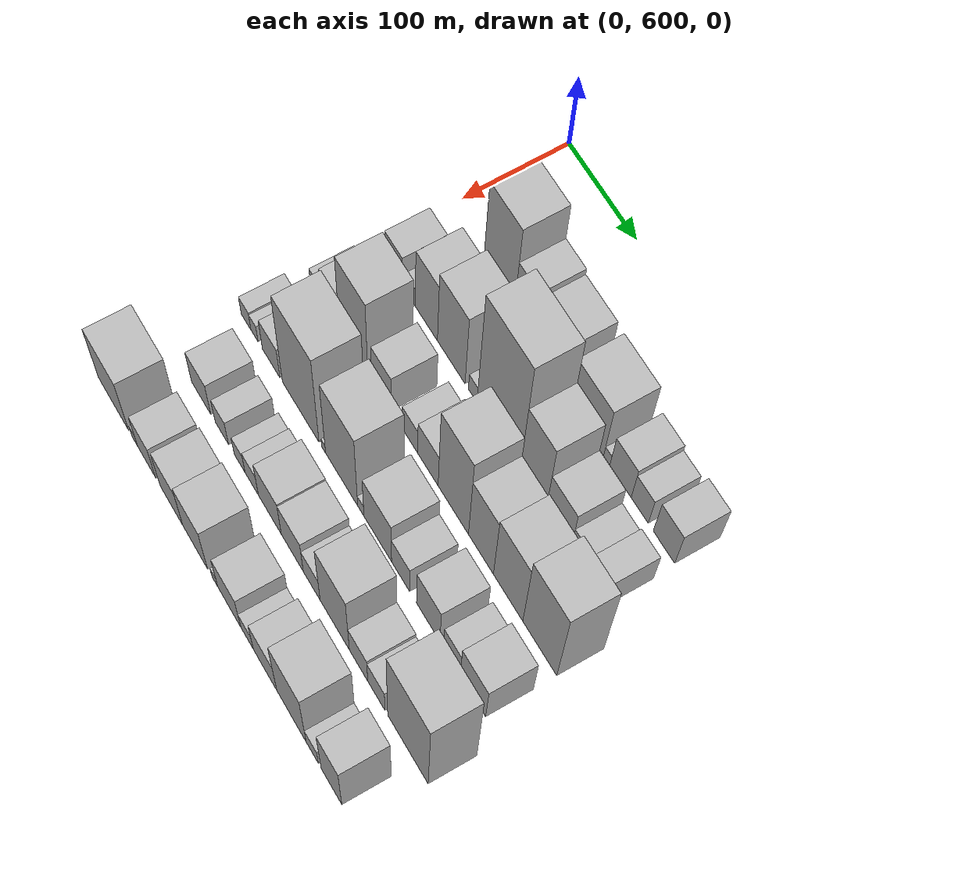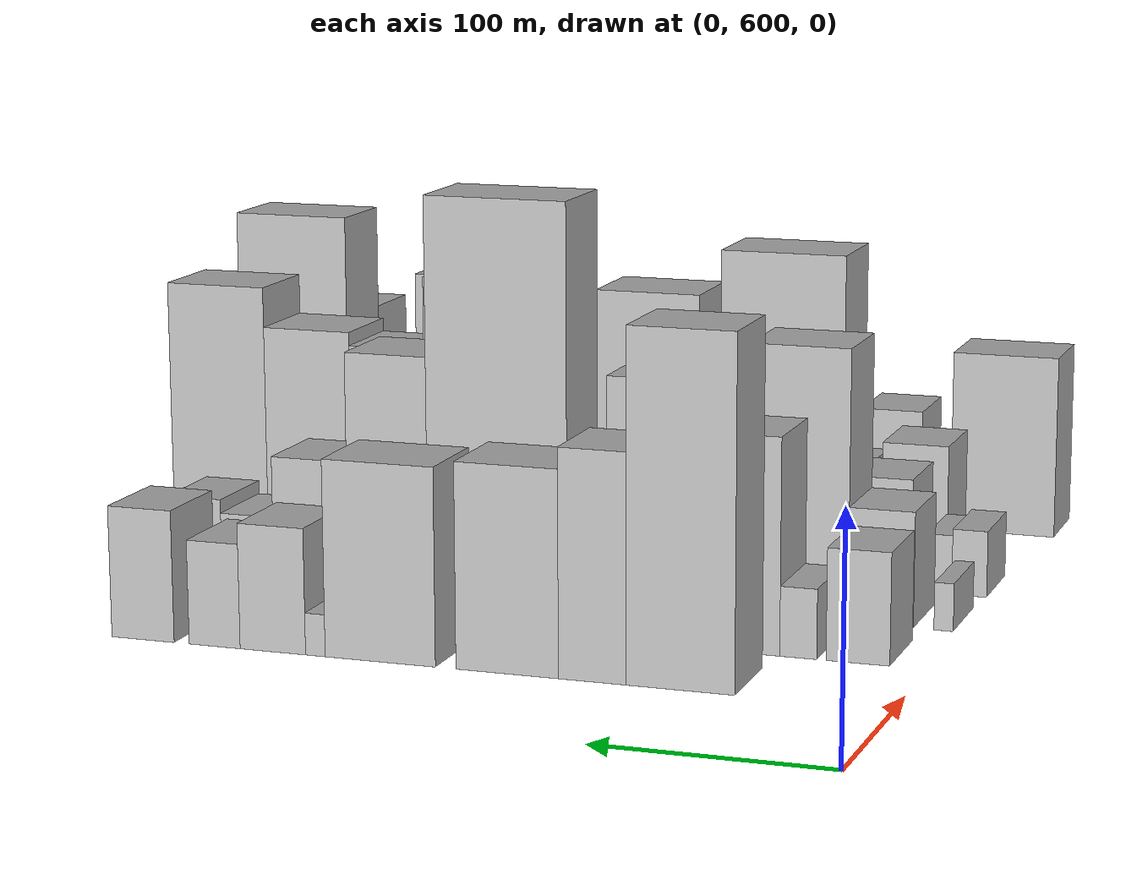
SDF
<sdf version="1.6">
 <world name="default">
  <model name="building_44">
   <static>1</static>
   <pose>100.0000 687.4828 0 0.000000 0.000000 0.000000</pose>
   <link name="link">
    <pose>0 0 73.50 0 0 0</pose>
    <collision name="collision"><geometry><box><size>40.0000 45.4917 147.0000</size></box></geometry></collision>
    <visual name="visual">
     <cast_shadows>0</cast_shadows>
     <geometry><box><size>40.0000 45.4917 147.0000</size></box></geometry>
     <material>
      <script>
       <uri>model://HANNAS_wall/materials/scripts</uri>
       <uri>model://HANNAS_wall/materials/textures</uri>
       <name>vrc/HANNAS_wall</name>
      </script>
     </material>
    </visual>
   </link>
  </model>
  <model name="building_45">
   <static>1</static>
   <pose>100.0000 724.6942 0 0.000000 0.000000 0.000000</pose>
   <link name="link">
    <pose>0 0 48.00 0 0 0</pose>
    <collision name="collision"><geometry><box><size>40.0000 28.9312 96.0000</size></box></geometry></collision>
    <visual name="visual">
     <cast_shadows>0</cast_shadows>
     <geometry><box><size>40.0000 28.9312 96.0000</size></box></geometry>
     <material>
      <script>
       <uri>model://HANNAS_wall/materials/scripts</uri>
       <uri>model://HANNAS_wall/materials/textures</uri>
       <name>vrc/HANNAS_wall</name>
      </script>
     </material>
    </visual>
   </link>
  </model>
  <model name="building_46">
   <static>1</static>
   <pose>100.0000 761.4003 0 0.000000 0.000000 0.000000</pose>
   <link name="link">
    <pose>0 0 43.50 0 0 0</pose>
    <collision name="collision"><geometry><box><size>40.0000 44.4810 87.0000</size></box></geometry></collision>
    <visual name="visual">
     <cast_shadows>0</cast_shadows>
     <geometry><box><size>40.0000 44.4810 87.0000</size></box></geometry>
     <material>
      <script>
       <uri>model://HANNAS_wall/materials/scripts</uri>
       <uri>model://HANNAS_wall/materials/textures</uri>
       <name>vrc/HANNAS_wall</name>
      </script>
     </material>
    </visual>
   </link>
  </model>
  <model name="building_47">
   <static>1</static>
   <pose>100.0000 817.2184 0 0.000000 0.000000 0.000000</pose>
   <link name="link">
    <pose>0 0 42.00 0 0 0</pose>
    <collision name="collision"><geometry><box><size>40.0000 49.1553 84.0000</size></box></geometry></collision>
    <visual name="visual">
     <cast_shadows>0</cast_shadows>
     <geometry><box><size>40.0000 49.1553 84.0000</size></box></geometry>
     <material>
      <script>
       <uri>model://HANNAS_wall/materials/scripts</uri>
       <uri>model://HANNAS_wall/materials/textures</uri>
       <name>vrc/HANNAS_wall</name>
      </script>
     </material>
    </visual>
   </link>
  </model>
  <model name="building_48">
   <static>1</static>
   <pose>100.0000 846.2265 0 0.000000 0.000000 0.000000</pose>
   <link name="link">
    <pose>0 0 9.00 0 0 0</pose>
    <collision name="collision"><geometry><box><size>40.0000 8.8609 18.0000</size></box></geometry></collision>
    <visual name="visual">
     <cast_shadows>0</cast_shadows>
     <geometry><box><size>40.0000 8.8609 18.0000</size></box></geometry>
     <material>
      <script>
       <uri>model://HANNAS_wall/materials/scripts</uri>
       <uri>model://HANNAS_wall/materials/textures</uri>
       <name>vrc/HANNAS_wall</name>
      </script>
     </material>
    </visual>
   </link>
  </model>
  <model name="building_49">
   <static>1</static>
   <pose>100.0000 865.5625 0 0.000000 0.000000 0.000000</pose>
   <link name="link">
    <pose>0 0 27.00 0 0 0</pose>
    <collision name="collision"><geometry><box><size>40.0000 29.8110 54.0000</size></box></geometry></collision>
    <visual name="visual">
     <cast_shadows>0</cast_shadows>
     <geometry><box><size>40.0000 29.8110 54.0000</size></box></geometry>
     <material>
      <script>
       <uri>model://HANNAS_wall/materials/scripts</uri>
       <uri>model://HANNAS_wall/materials/textures</uri>
       <name>vrc/HANNAS_wall</name>
      </script>
     </material>
    </visual>
   </link>
  </model>
  <model name="building_50">
   <static>1</static>
   <pose>100.0000 892.2128 0 0.000000 0.000000 0.000000</pose>
   <link name="link">
    <pose>0 0 22.50 0 0 0</pose>
    <collision name="collision"><geometry><box><size>40.0000 23.4897 45.0000</size></box></geometry></collision>
    <visual name="visual">
     <cast_shadows>0</cast_shadows>
     <geometry><box><size>40.0000 23.4897 45.0000</size></box></geometry>
     <material>
      <script>
       <uri>model://HANNAS_wall/materials/scripts</uri>
       <uri>model://HANNAS_wall/materials/textures</uri>
       <name>vrc/HANNAS_wall</name>
      </script>
     </material>
    </visual>
   </link>
  </model>
  <model name="building_51">
   <static>1</static>
   <pose>100.0000 925.5306 0 0.000000 0.000000 0.000000</pose>
   <link name="link">
    <pose>0 0 28.50 0 0 0</pose>
    <collision name="collision"><geometry><box><size>40.0000 29.1459 57.0000</size></box></geometry></collision>
    <visual name="visual">
     <cast_shadows>0</cast_shadows>
     <geometry><box><size>40.0000 29.1459 57.0000</size></box></geometry>
     <material>
      <script>
       <uri>model://HANNAS_wall/materials/scripts</uri>
       <uri>model://HANNAS_wall/materials/textures</uri>
       <name>vrc/HANNAS_wall</name>
      </script>
     </material>
    </visual>
   </link>
  </model>
  <model name="building_95">
   <static>1</static>
   <pose>160.0000 629.5499 0 0.000000 0.000000 0.000000</pose>
   <link name="link">
    <pose>0 0 24.00 0 0 0</pose>
    <collision name="collision"><geometry><box><size>40.0000 27.0341 48.0000</size></box></geometry></collision>
    <visual name="visual">
     <cast_shadows>0</cast_shadows>
     <geometry><box><size>40.0000 27.0341 48.0000</size></box></geometry>
     <material>
      <script>
       <uri>model://HANNAS_wall/materials/scripts</uri>
       <uri>model://HANNAS_wall/materials/textures</uri>
       <name>vrc/HANNAS_wall</name>
      </script>
     </material>
    </visual>
   </link>
  </model>
  <model name="building_96">
   <static>1</static>
   <pose>160.0000 655.0114 0 0.000000 0.000000 0.000000</pose>
   <link name="link">
    <pose>0 0 15.00 0 0 0</pose>
    <collision name="collision"><geometry><box><size>40.0000 15.8890 30.0000</size></box></geometry></collision>
    <visual name="visual">
     <cast_shadows>0</cast_shadows>
     <geometry><box><size>40.0000 15.8890 30.0000</size></box></geometry>
     <material>
      <script>
       <uri>model://HANNAS_wall/materials/scripts</uri>
       <uri>model://HANNAS_wall/materials/textures</uri>
       <name>vrc/HANNAS_wall</name>
      </script>
     </material>
    </visual>
   </link>
  </model>
  <model name="building_97">
   <static>1</static>
   <pose>160.0000 679.9207 0 0.000000 0.000000 0.000000</pose>
   <link name="link">
    <pose>0 0 46.50 0 0 0</pose>
    <collision name="collision"><geometry><box><size>40.0000 33.9296 93.0000</size></box></geometry></collision>
    <visual name="visual">
     <cast_shadows>0</cast_shadows>
     <geometry><box><size>40.0000 33.9296 93.0000</size></box></geometry>
     <material>
      <script>
       <uri>model://HANNAS_wall/materials/scripts</uri>
       <uri>model://HANNAS_wall/materials/textures</uri>
       <name>vrc/HANNAS_wall</name>
      </script>
     </material>
    </visual>
   </link>
  </model>
  <model name="building_98">
   <static>1</static>
   <pose>160.0000 717.7402 0 0.000000 0.000000 0.000000</pose>
   <link name="link">
    <pose>0 0 57.00 0 0 0</pose>
    <collision name="collision"><geometry><box><size>40.0000 41.7093 114.0000</size></box></geometry></collision>
    <visual name="visual">
     <cast_shadows>0</cast_shadows>
     <geometry><box><size>40.0000 41.7093 114.0000</size></box></geometry>
     <material>
      <script>
       <uri>model://HANNAS_wall/materials/scripts</uri>
       <uri>model://HANNAS_wall/materials/textures</uri>
       <name>vrc/HANNAS_wall</name>
      </script>
     </material>
    </visual>
   </link>
  </model>
  <model name="building_99">
   <static>1</static>
   <pose>160.0000 750.0001 0 0.000000 0.000000 0.000000</pose>
   <link name="link">
    <pose>0 0 13.50 0 0 0</pose>
    <collision name="collision"><geometry><box><size>40.0000 12.8106 27.0000</size></box></geometry></collision>
    <visual name="visual">
     <cast_shadows>0</cast_shadows>
     <geometry><box><size>40.0000 12.8106 27.0000</size></box></geometry>
     <material>
      <script>
       <uri>model://HANNAS_wall/materials/scripts</uri>
       <uri>model://HANNAS_wall/materials/textures</uri>
       <name>vrc/HANNAS_wall</name>
      </script>
     </material>
    </visual>
   </link>
  </model>
  <model name="building_100">
   <static>1</static>
   <pose>160.0000 788.0032 0 0.000000 0.000000 0.000000</pose>
   <link name="link">
    <pose>0 0 93.00 0 0 0</pose>
    <collision name="collision"><geometry><box><size>40.0000 63.1957 186.0000</size></box></geometry></collision>
    <visual name="visual">
     <cast_shadows>0</cast_shadows>
     <geometry><box><size>40.0000 63.1957 186.0000</size></box></geometry>
     <material>
      <script>
       <uri>model://HANNAS_wall/materials/scripts</uri>
       <uri>model://HANNAS_wall/materials/textures</uri>
       <name>vrc/HANNAS_wall</name>
      </script>
     </material>
    </visual>
   </link>
  </model>
  <model name="building_101">
   <static>1</static>
   <pose>160.0000 838.1586 0 0.000000 0.000000 0.000000</pose>
   <link name="link">
    <pose>0 0 58.50 0 0 0</pose>
    <collision name="collision"><geometry><box><size>40.0000 37.1150 117.0000</size></box></geometry></collision>
    <visual name="visual">
     <cast_shadows>0</cast_shadows>
     <geometry><box><size>40.0000 37.1150 117.0000</size></box></geometry>
     <material>
      <script>
       <uri>model://HANNAS_wall/materials/scripts</uri>
       <uri>model://HANNAS_wall/materials/textures</uri>
       <name>vrc/HANNAS_wall</name>
      </script>
     </material>
    </visual>
   </link>
  </model>
  <model name="building_102">
   <static>1</static>
   <pose>160.0000 874.3275 0 0.000000 0.000000 0.000000</pose>
   <link name="link">
    <pose>0 0 34.50 0 0 0</pose>
    <collision name="collision"><geometry><box><size>40.0000 35.2227 69.0000</size></box></geometry></collision>
    <visual name="visual">
     <cast_shadows>0</cast_shadows>
     <geometry><box><size>40.0000 35.2227 69.0000</size></box></geometry>
     <material>
      <script>
       <uri>model://HANNAS_wall/materials/scripts</uri>
       <uri>model://HANNAS_wall/materials/textures</uri>
       <name>vrc/HANNAS_wall</name>
      </script>
     </material>
    </visual>
   </link>
  </model>
  <model name="building_103">
   <static>1</static>
   <pose>160.0000 904.3843 0 0.000000 0.000000 0.000000</pose>
   <link name="link">
    <pose>0 0 21.00 0 0 0</pose>
    <collision name="collision"><geometry><box><size>40.0000 24.8910 42.0000</size></box></geometry></collision>
    <visual name="visual">
     <cast_shadows>0</cast_shadows>
     <geometry><box><size>40.0000 24.8910 42.0000</size></box></geometry>
     <material>
      <script>
       <uri>model://HANNAS_wall/materials/scripts</uri>
       <uri>model://HANNAS_wall/materials/textures</uri>
       <name>vrc/HANNAS_wall</name>
      </script>
     </material>
    </visual>
   </link>
  </model>
  <model name="building_104">
   <static>1</static>
   <pose>160.0000 929.5264 0 0.000000 0.000000 0.000000</pose>
   <link name="link">
    <pose>0 0 24.00 0 0 0</pose>
    <collision name="collision"><geometry><box><size>40.0000 25.3932 48.0000</size></box></geometry></collision>
    <visual name="visual">
     <cast_shadows>0</cast_shadows>
     <geometry><box><size>40.0000 25.3932 48.0000</size></box></geometry>
     <material>
      <script>
       <uri>model://HANNAS_wall/materials/scripts</uri>
       <uri>model://HANNAS_wall/materials/textures</uri>
       <name>vrc/HANNAS_wall</name>
      </script>
     </material>
    </visual>
   </link>
  </model>
  <model name="building_148">
   <static>1</static>
   <pose>220.0000 607.0622 0 0.000000 0.000000 0.000000</pose>
   <link name="link">
    <pose>0 0 10.50 0 0 0</pose>
    <collision name="collision"><geometry><box><size>40.0000 8.4365 21.0000</size></box></geometry></collision>
    <visual name="visual">
     <cast_shadows>0</cast_shadows>
     <geometry><box><size>40.0000 8.4365 21.0000</size></box></geometry>
     <material>
      <script>
       <uri>model://HANNAS_wall/materials/scripts</uri>
       <uri>model://HANNAS_wall/materials/textures</uri>
       <name>vrc/HANNAS_wall</name>
      </script>
     </material>
    </visual>
   </link>
  </model>
  <model name="building_149">
   <static>1</static>
   <pose>220.0000 634.7570 0 0.000000 0.000000 0.000000</pose>
   <link name="link">
    <pose>0 0 25.50 0 0 0</pose>
    <collision name="collision"><geometry><box><size>40.0000 28.9530 51.0000</size></box></geometry></collision>
    <visual name="visual">
     <cast_shadows>0</cast_shadows>
     <geometry><box><size>40.0000 28.9530 51.0000</size></box></geometry>
     <material>
      <script>
       <uri>model://HANNAS_wall/materials/scripts</uri>
       <uri>model://HANNAS_wall/materials/textures</uri>
       <name>vrc/HANNAS_wall</name>
      </script>
     </material>
    </visual>
   </link>
  </model>
  <model name="building_150">
   <static>1</static>
   <pose>220.0000 671.5532 0 0.000000 0.000000 0.000000</pose>
   <link name="link">
    <pose>0 0 60.00 0 0 0</pose>
    <collision name="collision"><geometry><box><size>40.0000 44.6393 120.0000</size></box></geometry></collision>
    <visual name="visual">
     <cast_shadows>0</cast_shadows>
     <geometry><box><size>40.0000 44.6393 120.0000</size></box></geometry>
     <material>
      <script>
       <uri>model://HANNAS_wall/materials/scripts</uri>
       <uri>model://HANNAS_wall/materials/textures</uri>
       <name>vrc/HANNAS_wall</name>
      </script>
     </material>
    </visual>
   </link>
  </model>
  <model name="building_151">
   <static>1</static>
   <pose>220.0000 714.9183 0 0.000000 0.000000 0.000000</pose>
   <link name="link">
    <pose>0 0 30.00 0 0 0</pose>
    <collision name="collision"><geometry><box><size>40.0000 30.0909 60.0000</size></box></geometry></collision>
    <visual name="visual">
     <cast_shadows>0</cast_shadows>
     <geometry><box><size>40.0000 30.0909 60.0000</size></box></geometry>
     <material>
      <script>
       <uri>model://HANNAS_wall/materials/scripts</uri>
       <uri>model://HANNAS_wall/materials/textures</uri>
       <name>vrc/HANNAS_wall</name>
      </script>
     </material>
    </visual>
   </link>
  </model>
  <model name="building_152">
   <static>1</static>
   <pose>220.0000 743.1074 0 0.000000 0.000000 0.000000</pose>
   <link name="link">
    <pose>0 0 7.50 0 0 0</pose>
    <collision name="collision"><geometry><box><size>40.0000 6.2872 15.0000</size></box></geometry></collision>
    <visual name="visual">
     <cast_shadows>0</cast_shadows>
     <geometry><box><size>40.0000 6.2872 15.0000</size></box></geometry>
     <material>
      <script>
       <uri>model://HANNAS_wall/materials/scripts</uri>
       <uri>model://HANNAS_wall/materials/textures</uri>
       <name>vrc/HANNAS_wall</name>
      </script>
     </material>
    </visual>
   </link>
  </model>
  <model name="building_153">
   <static>1</static>
   <pose>220.0000 757.9773 0 0.000000 0.000000 0.000000</pose>
   <link name="link">
    <pose>0 0 21.00 0 0 0</pose>
    <collision name="collision"><geometry><box><size>40.0000 23.4525 42.0000</size></box></geometry></collision>
    <visual name="visual">
     <cast_shadows>0</cast_shadows>
     <geometry><box><size>40.0000 23.4525 42.0000</size></box></geometry>
     <material>
      <script>
       <uri>model://HANNAS_wall/materials/scripts</uri>
       <uri>model://HANNAS_wall/materials/textures</uri>
       <name>vrc/HANNAS_wall</name>
      </script>
     </material>
    </visual>
   </link>
  </model>
  <model name="building_154">
   <static>1</static>
   <pose>220.0000 784.8920 0 0.000000 0.000000 0.000000</pose>
   <link name="link">
    <pose>0 0 28.50 0 0 0</pose>
    <collision name="collision"><geometry><box><size>40.0000 30.3767 57.0000</size></box></geometry></collision>
    <visual name="visual">
     <cast_shadows>0</cast_shadows>
     <geometry><box><size>40.0000 30.3767 57.0000</size></box></geometry>
     <material>
      <script>
       <uri>model://HANNAS_wall/materials/scripts</uri>
       <uri>model://HANNAS_wall/materials/textures</uri>
       <name>vrc/HANNAS_wall</name>
      </script>
     </material>
    </visual>
   </link>
  </model>
  <model name="building_155">
   <static>1</static>
   <pose>220.0000 822.2957 0 0.000000 0.000000 0.000000</pose>
   <link name="link">
    <pose>0 0 70.50 0 0 0</pose>
    <collision name="collision"><geometry><box><size>40.0000 44.4307 141.0000</size></box></geometry></collision>
    <visual name="visual">
     <cast_shadows>0</cast_shadows>
     <geometry><box><size>40.0000 44.4307 141.0000</size></box></geometry>
     <material>
      <script>
       <uri>model://HANNAS_wall/materials/scripts</uri>
       <uri>model://HANNAS_wall/materials/textures</uri>
       <name>vrc/HANNAS_wall</name>
      </script>
     </material>
    </visual>
   </link>
  </model>
  <model name="building_156">
   <static>1</static>
   <pose>220.0000 862.4325 0 0.000000 0.000000 0.000000</pose>
   <link name="link">
    <pose>0 0 54.00 0 0 0</pose>
    <collision name="collision"><geometry><box><size>40.0000 35.8430 108.0000</size></box></geometry></collision>
    <visual name="visual">
     <cast_shadows>0</cast_shadows>
     <geometry><box><size>40.0000 35.8430 108.0000</size></box></geometry>
     <material>
      <script>
       <uri>model://HANNAS_wall/materials/scripts</uri>
       <uri>model://HANNAS_wall/materials/textures</uri>
       <name>vrc/HANNAS_wall</name>
      </script>
     </material>
    </visual>
   </link>
  </model>
  <model name="building_157">
   <static>1</static>
   <pose>220.0000 901.1492 0 0.000000 0.000000 0.000000</pose>
   <link name="link">
    <pose>0 0 57.00 0 0 0</pose>
    <collision name="collision"><geometry><box><size>40.0000 41.5905 114.0000</size></box></geometry></collision>
    <visual name="visual">
     <cast_shadows>0</cast_shadows>
     <geometry><box><size>40.0000 41.5905 114.0000</size></box></geometry>
     <material>
      <script>
       <uri>model://HANNAS_wall/materials/scripts</uri>
       <uri>model://HANNAS_wall/materials/textures</uri>
       <name>vrc/HANNAS_wall</name>
      </script>
     </material>
    </visual>
   </link>
  </model>
  <model name="building_158">
   <static>1</static>
   <pose>220.0000 945.5221 0 0.000000 0.000000 0.000000</pose>
   <link name="link">
    <pose>0 0 66.00 0 0 0</pose>
    <collision name="collision"><geometry><box><size>40.0000 47.1552 132.0000</size></box></geometry></collision>
    <visual name="visual">
     <cast_shadows>0</cast_shadows>
     <geometry><box><size>40.0000 47.1552 132.0000</size></box></geometry>
     <material>
      <script>
       <uri>model://HANNAS_wall/materials/scripts</uri>
       <uri>model://HANNAS_wall/materials/textures</uri>
       <name>vrc/HANNAS_wall</name>
      </script>
     </material>
    </visual>
   </link>
  </model>
  <model name="building_202">
   <static>1</static>
   <pose>280.0000 608.9879 0 0.000000 0.000000 0.000000</pose>
   <link name="link">
    <pose>0 0 15.00 0 0 0</pose>
    <collision name="collision"><geometry><box><size>40.0000 15.8280 30.0000</size></box></geometry></collision>
    <visual name="visual">
     <cast_shadows>0</cast_shadows>
     <geometry><box><size>40.0000 15.8280 30.0000</size></box></geometry>
     <material>
      <script>
       <uri>model://HANNAS_wall/materials/scripts</uri>
       <uri>model://HANNAS_wall/materials/textures</uri>
       <name>vrc/HANNAS_wall</name>
      </script>
     </material>
    </visual>
   </link>
  </model>
  <model name="building_203">
   <static>1</static>
   <pose>280.0000 622.6655 0 0.000000 0.000000 0.000000</pose>
   <link name="link">
    <pose>0 0 13.50 0 0 0</pose>
    <collision name="collision"><geometry><box><size>40.0000 11.5272 27.0000</size></box></geometry></collision>
    <visual name="visual">
     <cast_shadows>0</cast_shadows>
     <geometry><box><size>40.0000 11.5272 27.0000</size></box></geometry>
     <material>
      <script>
       <uri>model://HANNAS_wall/materials/scripts</uri>
       <uri>model://HANNAS_wall/materials/textures</uri>
       <name>vrc/HANNAS_wall</name>
      </script>
     </material>
    </visual>
   </link>
  </model>
  <model name="building_204">
   <static>1</static>
   <pose>280.0000 649.4216 0 0.000000 0.000000 0.000000</pose>
   <link name="link">
    <pose>0 0 25.50 0 0 0</pose>
    <collision name="collision"><geometry><box><size>40.0000 27.9849 51.0000</size></box></geometry></collision>
    <visual name="visual">
     <cast_shadows>0</cast_shadows>
     <geometry><box><size>40.0000 27.9849 51.0000</size></box></geometry>
     <material>
      <script>
       <uri>model://HANNAS_wall/materials/scripts</uri>
       <uri>model://HANNAS_wall/materials/textures</uri>
       <name>vrc/HANNAS_wall</name>
      </script>
     </material>
    </visual>
   </link>
  </model>
  <model name="building_205">
   <static>1</static>
   <pose>280.0000 696.1020 0 0.000000 0.000000 0.000000</pose>
   <link name="link">
    <pose>0 0 75.00 0 0 0</pose>
    <collision name="collision"><geometry><box><size>40.0000 57.3759 150.0000</size></box></geometry></collision>
    <visual name="visual">
     <cast_shadows>0</cast_shadows>
     <geometry><box><size>40.0000 57.3759 150.0000</size></box></geometry>
     <material>
      <script>
       <uri>model://HANNAS_wall/materials/scripts</uri>
       <uri>model://HANNAS_wall/materials/textures</uri>
       <name>vrc/HANNAS_wall</name>
      </script>
     </material>
    </visual>
   </link>
  </model>
  <model name="building_206">
   <static>1</static>
   <pose>280.0000 731.8856 0 0.000000 0.000000 0.000000</pose>
   <link name="link">
    <pose>0 0 7.50 0 0 0</pose>
    <collision name="collision"><geometry><box><size>40.0000 6.1913 15.0000</size></box></geometry></collision>
    <visual name="visual">
     <cast_shadows>0</cast_shadows>
     <geometry><box><size>40.0000 6.1913 15.0000</size></box></geometry>
     <material>
      <script>
       <uri>model://HANNAS_wall/materials/scripts</uri>
       <uri>model://HANNAS_wall/materials/textures</uri>
       <name>vrc/HANNAS_wall</name>
      </script>
     </material>
    </visual>
   </link>
  </model>
  <model name="building_207">
   <static>1</static>
   <pose>280.0000 759.4591 0 0.000000 0.000000 0.000000</pose>
   <link name="link">
    <pose>0 0 64.50 0 0 0</pose>
    <collision name="collision"><geometry><box><size>40.0000 48.9557 129.0000</size></box></geometry></collision>
    <visual name="visual">
     <cast_shadows>0</cast_shadows>
     <geometry><box><size>40.0000 48.9557 129.0000</size></box></geometry>
     <material>
      <script>
       <uri>model://HANNAS_wall/materials/scripts</uri>
       <uri>model://HANNAS_wall/materials/textures</uri>
       <name>vrc/HANNAS_wall</name>
      </script>
     </material>
    </visual>
   </link>
  </model>
  <model name="building_208">
   <static>1</static>
   <pose>280.0000 788.6704 0 0.000000 0.000000 0.000000</pose>
   <link name="link">
    <pose>0 0 10.50 0 0 0</pose>
    <collision name="collision"><geometry><box><size>40.0000 9.4669 21.0000</size></box></geometry></collision>
    <visual name="visual">
     <cast_shadows>0</cast_shadows>
     <geometry><box><size>40.0000 9.4669 21.0000</size></box></geometry>
     <material>
      <script>
       <uri>model://HANNAS_wall/materials/scripts</uri>
       <uri>model://HANNAS_wall/materials/textures</uri>
       <name>vrc/HANNAS_wall</name>
      </script>
     </material>
    </visual>
   </link>
  </model>
  <model name="building_209">
   <static>1</static>
   <pose>280.0000 813.9684 0 0.000000 0.000000 0.000000</pose>
   <link name="link">
    <pose>0 0 37.50 0 0 0</pose>
    <collision name="collision"><geometry><box><size>40.0000 41.1292 75.0000</size></box></geometry></collision>
    <visual name="visual">
     <cast_shadows>0</cast_shadows>
     <geometry><box><size>40.0000 41.1292 75.0000</size></box></geometry>
     <material>
      <script>
       <uri>model://HANNAS_wall/materials/scripts</uri>
       <uri>model://HANNAS_wall/materials/textures</uri>
       <name>vrc/HANNAS_wall</name>
      </script>
     </material>
    </visual>
   </link>
  </model>
  <model name="building_210">
   <static>1</static>
   <pose>280.0000 847.7946 0 0.000000 0.000000 0.000000</pose>
   <link name="link">
    <pose>0 0 24.00 0 0 0</pose>
    <collision name="collision"><geometry><box><size>40.0000 26.5230 48.0000</size></box></geometry></collision>
    <visual name="visual">
     <cast_shadows>0</cast_shadows>
     <geometry><box><size>40.0000 26.5230 48.0000</size></box></geometry>
     <material>
      <script>
       <uri>model://HANNAS_wall/materials/scripts</uri>
       <uri>model://HANNAS_wall/materials/textures</uri>
       <name>vrc/HANNAS_wall</name>
      </script>
     </material>
    </visual>
   </link>
  </model>
  <model name="building_211">
   <static>1</static>
   <pose>280.0000 887.9325 0 0.000000 0.000000 0.000000</pose>
   <link name="link">
    <pose>0 0 33.00 0 0 0</pose>
    <collision name="collision"><geometry><box><size>40.0000 33.7529 66.0000</size></box></geometry></collision>
    <visual name="visual">
     <cast_shadows>0</cast_shadows>
     <geometry><box><size>40.0000 33.7529 66.0000</size></box></geometry>
     <material>
      <script>
       <uri>model://HANNAS_wall/materials/scripts</uri>
       <uri>model://HANNAS_wall/materials/textures</uri>
       <name>vrc/HANNAS_wall</name>
      </script>
     </material>
    </visual>
   </link>
  </model>
  <model name="building_212">
   <static>1</static>
   <pose>280.0000 921.8101 0 0.000000 0.000000 0.000000</pose>
   <link name="link">
    <pose>0 0 22.50 0 0 0</pose>
    <collision name="collision"><geometry><box><size>40.0000 24.0023 45.0000</size></box></geometry></collision>
    <visual name="visual">
     <cast_shadows>0</cast_shadows>
     <geometry><box><size>40.0000 24.0023 45.0000</size></box></geometry>
     <material>
      <script>
       <uri>model://HANNAS_wall/materials/scripts</uri>
       <uri>model://HANNAS_wall/materials/textures</uri>
       <name>vrc/HANNAS_wall</name>
      </script>
     </material>
    </visual>
   </link>
  </model>
  <model name="building_213">
   <static>1</static>
   <pose>280.0000 951.5873 0 0.000000 0.000000 0.000000</pose>
   <link name="link">
    <pose>0 0 31.50 0 0 0</pose>
    <collision name="collision"><geometry><box><size>40.0000 35.5521 63.0000</size></box></geometry></collision>
    <visual name="visual">
     <cast_shadows>0</cast_shadows>
     <geometry><box><size>40.0000 35.5521 63.0000</size></box></geometry>
     <material>
      <script>
       <uri>model://HANNAS_wall/materials/scripts</uri>
       <uri>model://HANNAS_wall/materials/textures</uri>
       <name>vrc/HANNAS_wall</name>
      </script>
     </material>
    </visual>
   </link>
  </model>
  <model name="building_258">
   <static>1</static>
   <pose>340.0000 648.2789 0 0.000000 0.000000 0.000000</pose>
   <link name="link">
    <pose>0 0 27.00 0 0 0</pose>
    <collision name="collision"><geometry><box><size>40.0000 31.2981 54.0000</size></box></geometry></collision>
    <visual name="visual">
     <cast_shadows>0</cast_shadows>
     <geometry><box><size>40.0000 31.2981 54.0000</size></box></geometry>
     <material>
      <script>
       <uri>model://HANNAS_wall/materials/scripts</uri>
       <uri>model://HANNAS_wall/materials/textures</uri>
       <name>vrc/HANNAS_wall</name>
      </script>
     </material>
    </visual>
   </link>
  </model>
  <model name="building_259">
   <static>1</static>
   <pose>340.0000 681.6626 0 0.000000 0.000000 0.000000</pose>
   <link name="link">
    <pose>0 0 21.00 0 0 0</pose>
    <collision name="collision"><geometry><box><size>40.0000 21.4693 42.0000</size></box></geometry></collision>
    <visual name="visual">
     <cast_shadows>0</cast_shadows>
     <geometry><box><size>40.0000 21.4693 42.0000</size></box></geometry>
     <material>
      <script>
       <uri>model://HANNAS_wall/materials/scripts</uri>
       <uri>model://HANNAS_wall/materials/textures</uri>
       <name>vrc/HANNAS_wall</name>
      </script>
     </material>
    </visual>
   </link>
  </model>
  <model name="building_260">
   <static>1</static>
   <pose>340.0000 709.9855 0 0.000000 0.000000 0.000000</pose>
   <link name="link">
    <pose>0 0 16.50 0 0 0</pose>
    <collision name="collision"><geometry><box><size>40.0000 17.1766 33.0000</size></box></geometry></collision>
    <visual name="visual">
     <cast_shadows>0</cast_shadows>
     <geometry><box><size>40.0000 17.1766 33.0000</size></box></geometry>
     <material>
      <script>
       <uri>model://HANNAS_wall/materials/scripts</uri>
       <uri>model://HANNAS_wall/materials/textures</uri>
       <name>vrc/HANNAS_wall</name>
      </script>
     </material>
    </visual>
   </link>
  </model>
  <model name="building_261">
   <static>1</static>
   <pose>340.0000 729.1147 0 0.000000 0.000000 0.000000</pose>
   <link name="link">
    <pose>0 0 19.50 0 0 0</pose>
    <collision name="collision"><geometry><box><size>40.0000 21.0818 39.0000</size></box></geometry></collision>
    <visual name="visual">
     <cast_shadows>0</cast_shadows>
     <geometry><box><size>40.0000 21.0818 39.0000</size></box></geometry>
     <material>
      <script>
       <uri>model://HANNAS_wall/materials/scripts</uri>
       <uri>model://HANNAS_wall/materials/textures</uri>
       <name>vrc/HANNAS_wall</name>
      </script>
     </material>
    </visual>
   </link>
  </model>
  <model name="building_262">
   <static>1</static>
   <pose>340.0000 757.3788 0 0.000000 0.000000 0.000000</pose>
   <link name="link">
    <pose>0 0 31.50 0 0 0</pose>
    <collision name="collision"><geometry><box><size>40.0000 35.4465 63.0000</size></box></geometry></collision>
    <visual name="visual">
     <cast_shadows>0</cast_shadows>
     <geometry><box><size>40.0000 35.4465 63.0000</size></box></geometry>
     <material>
      <script>
       <uri>model://HANNAS_wall/materials/scripts</uri>
       <uri>model://HANNAS_wall/materials/textures</uri>
       <name>vrc/HANNAS_wall</name>
      </script>
     </material>
    </visual>
   </link>
  </model>
  <model name="building_263">
   <static>1</static>
   <pose>340.0000 791.9189 0 0.000000 0.000000 0.000000</pose>
   <link name="link">
    <pose>0 0 30.00 0 0 0</pose>
    <collision name="collision"><geometry><box><size>40.0000 33.6337 60.0000</size></box></geometry></collision>
    <visual name="visual">
     <cast_shadows>0</cast_shadows>
     <geometry><box><size>40.0000 33.6337 60.0000</size></box></geometry>
     <material>
      <script>
       <uri>model://HANNAS_wall/materials/scripts</uri>
       <uri>model://HANNAS_wall/materials/textures</uri>
       <name>vrc/HANNAS_wall</name>
      </script>
     </material>
    </visual>
   </link>
  </model>
  <model name="building_264">
   <static>1</static>
   <pose>340.0000 821.4259 0 0.000000 0.000000 0.000000</pose>
   <link name="link">
    <pose>0 0 22.50 0 0 0</pose>
    <collision name="collision"><geometry><box><size>40.0000 25.3804 45.0000</size></box></geometry></collision>
    <visual name="visual">
     <cast_shadows>0</cast_shadows>
     <geometry><box><size>40.0000 25.3804 45.0000</size></box></geometry>
     <material>
      <script>
       <uri>model://HANNAS_wall/materials/scripts</uri>
       <uri>model://HANNAS_wall/materials/textures</uri>
       <name>vrc/HANNAS_wall</name>
      </script>
     </material>
    </visual>
   </link>
  </model>
  <model name="building_265">
   <static>1</static>
   <pose>340.0000 855.8095 0 0.000000 0.000000 0.000000</pose>
   <link name="link">
    <pose>0 0 55.50 0 0 0</pose>
    <collision name="collision"><geometry><box><size>40.0000 43.3867 111.0000</size></box></geometry></collision>
    <visual name="visual">
     <cast_shadows>0</cast_shadows>
     <geometry><box><size>40.0000 43.3867 111.0000</size></box></geometry>
     <material>
      <script>
       <uri>model://HANNAS_wall/materials/scripts</uri>
       <uri>model://HANNAS_wall/materials/textures</uri>
       <name>vrc/HANNAS_wall</name>
      </script>
     </material>
    </visual>
   </link>
  </model>
  <model name="building_266">
   <static>1</static>
   <pose>340.0000 890.9671 0 0.000000 0.000000 0.000000</pose>
   <link name="link">
    <pose>0 0 25.50 0 0 0</pose>
    <collision name="collision"><geometry><box><size>40.0000 26.9285 51.0000</size></box></geometry></collision>
    <visual name="visual">
     <cast_shadows>0</cast_shadows>
     <geometry><box><size>40.0000 26.9285 51.0000</size></box></geometry>
     <material>
      <script>
       <uri>model://HANNAS_wall/materials/scripts</uri>
       <uri>model://HANNAS_wall/materials/textures</uri>
       <name>vrc/HANNAS_wall</name>
      </script>
     </material>
    </visual>
   </link>
  </model>
  <model name="building_267">
   <static>1</static>
   <pose>340.0000 916.8297 0 0.000000 0.000000 0.000000</pose>
   <link name="link">
    <pose>0 0 22.50 0 0 0</pose>
    <collision name="collision"><geometry><box><size>40.0000 24.7966 45.0000</size></box></geometry></collision>
    <visual name="visual">
     <cast_shadows>0</cast_shadows>
     <geometry><box><size>40.0000 24.7966 45.0000</size></box></geometry>
     <material>
      <script>
       <uri>model://HANNAS_wall/materials/scripts</uri>
       <uri>model://HANNAS_wall/materials/textures</uri>
       <name>vrc/HANNAS_wall</name>
      </script>
     </material>
    </visual>
   </link>
  </model>
  <model name="building_268">
   <static>1</static>
   <pose>340.0000 961.8767 0 0.000000 0.000000 0.000000</pose>
   <link name="link">
    <pose>0 0 73.50 0 0 0</pose>
    <collision name="collision"><geometry><box><size>40.0000 57.2974 147.0000</size></box></geometry></collision>
    <visual name="visual">
     <cast_shadows>0</cast_shadows>
     <geometry><box><size>40.0000 57.2974 147.0000</size></box></geometry>
     <material>
      <script>
       <uri>model://HANNAS_wall/materials/scripts</uri>
       <uri>model://HANNAS_wall/materials/textures</uri>
       <name>vrc/HANNAS_wall</name>
      </script>
     </material>
    </visual>
   </link>
  </model>
  <model name="building_307">
   <static>1</static>
   <pose>400.0000 619.0310 0 0.000000 0.000000 0.000000</pose>
   <link name="link">
    <pose>0 0 43.50 0 0 0</pose>
    <collision name="collision"><geometry><box><size>40.0000 50.5706 87.0000</size></box></geometry></collision>
    <visual name="visual">
     <cast_shadows>0</cast_shadows>
     <geometry><box><size>40.0000 50.5706 87.0000</size></box></geometry>
     <material>
      <script>
       <uri>model://HANNAS_wall/materials/scripts</uri>
       <uri>model://HANNAS_wall/materials/textures</uri>
       <name>vrc/HANNAS_wall</name>
      </script>
     </material>
    </visual>
   </link>
  </model>
  <model name="building_308">
   <static>1</static>
   <pose>400.0000 654.5936 0 0.000000 0.000000 0.000000</pose>
   <link name="link">
    <pose>0 0 10.50 0 0 0</pose>
    <collision name="collision"><geometry><box><size>40.0000 8.5545 21.0000</size></box></geometry></collision>
    <visual name="visual">
     <cast_shadows>0</cast_shadows>
     <geometry><box><size>40.0000 8.5545 21.0000</size></box></geometry>
     <material>
      <script>
       <uri>model://HANNAS_wall/materials/scripts</uri>
       <uri>model://HANNAS_wall/materials/textures</uri>
       <name>vrc/HANNAS_wall</name>
      </script>
     </material>
    </visual>
   </link>
  </model>
  <model name="building_309">
   <static>1</static>
   <pose>400.0000 673.8867 0 0.000000 0.000000 0.000000</pose>
   <link name="link">
    <pose>0 0 28.50 0 0 0</pose>
    <collision name="collision"><geometry><box><size>40.0000 30.0317 57.0000</size></box></geometry></collision>
    <visual name="visual">
     <cast_shadows>0</cast_shadows>
     <geometry><box><size>40.0000 30.0317 57.0000</size></box></geometry>
     <material>
      <script>
       <uri>model://HANNAS_wall/materials/scripts</uri>
       <uri>model://HANNAS_wall/materials/textures</uri>
       <name>vrc/HANNAS_wall</name>
      </script>
     </material>
    </visual>
   </link>
  </model>
  <model name="building_310">
   <static>1</static>
   <pose>400.0000 714.2674 0 0.000000 0.000000 0.000000</pose>
   <link name="link">
    <pose>0 0 33.00 0 0 0</pose>
    <collision name="collision"><geometry><box><size>40.0000 36.7298 66.0000</size></box></geometry></collision>
    <visual name="visual">
     <cast_shadows>0</cast_shadows>
     <geometry><box><size>40.0000 36.7298 66.0000</size></box></geometry>
     <material>
      <script>
       <uri>model://HANNAS_wall/materials/scripts</uri>
       <uri>model://HANNAS_wall/materials/textures</uri>
       <name>vrc/HANNAS_wall</name>
      </script>
     </material>
    </visual>
   </link>
  </model>
  <model name="building_311">
   <static>1</static>
   <pose>400.0000 752.2351 0 0.000000 0.000000 0.000000</pose>
   <link name="link">
    <pose>0 0 39.00 0 0 0</pose>
    <collision name="collision"><geometry><box><size>40.0000 39.2055 78.0000</size></box></geometry></collision>
    <visual name="visual">
     <cast_shadows>0</cast_shadows>
     <geometry><box><size>40.0000 39.2055 78.0000</size></box></geometry>
     <material>
      <script>
       <uri>model://HANNAS_wall/materials/scripts</uri>
       <uri>model://HANNAS_wall/materials/textures</uri>
       <name>vrc/HANNAS_wall</name>
      </script>
     </material>
    </visual>
   </link>
  </model>
  <model name="building_312">
   <static>1</static>
   <pose>400.0000 783.3740 0 0.000000 0.000000 0.000000</pose>
   <link name="link">
    <pose>0 0 10.50 0 0 0</pose>
    <collision name="collision"><geometry><box><size>40.0000 9.0723 21.0000</size></box></geometry></collision>
    <visual name="visual">
     <cast_shadows>0</cast_shadows>
     <geometry><box><size>40.0000 9.0723 21.0000</size></box></geometry>
     <material>
      <script>
       <uri>model://HANNAS_wall/materials/scripts</uri>
       <uri>model://HANNAS_wall/materials/textures</uri>
       <name>vrc/HANNAS_wall</name>
      </script>
     </material>
    </visual>
   </link>
  </model>
  <model name="building_313">
   <static>1</static>
   <pose>400.0000 805.7090 0 0.000000 0.000000 0.000000</pose>
   <link name="link">
    <pose>0 0 31.50 0 0 0</pose>
    <collision name="collision"><geometry><box><size>40.0000 35.5979 63.0000</size></box></geometry></collision>
    <visual name="visual">
     <cast_shadows>0</cast_shadows>
     <geometry><box><size>40.0000 35.5979 63.0000</size></box></geometry>
     <material>
      <script>
       <uri>model://HANNAS_wall/materials/scripts</uri>
       <uri>model://HANNAS_wall/materials/textures</uri>
       <name>vrc/HANNAS_wall</name>
      </script>
     </material>
    </visual>
   </link>
  </model>
  <model name="building_314">
   <static>1</static>
   <pose>400.0000 833.0591 0 0.000000 0.000000 0.000000</pose>
   <link name="link">
    <pose>0 0 16.50 0 0 0</pose>
    <collision name="collision"><geometry><box><size>40.0000 19.1023 33.0000</size></box></geometry></collision>
    <visual name="visual">
     <cast_shadows>0</cast_shadows>
     <geometry><box><size>40.0000 19.1023 33.0000</size></box></geometry>
     <material>
      <script>
       <uri>model://HANNAS_wall/materials/scripts</uri>
       <uri>model://HANNAS_wall/materials/textures</uri>
       <name>vrc/HANNAS_wall</name>
      </script>
     </material>
    </visual>
   </link>
  </model>
  <model name="building_315">
   <static>1</static>
   <pose>400.0000 860.2694 0 0.000000 0.000000 0.000000</pose>
   <link name="link">
    <pose>0 0 30.00 0 0 0</pose>
    <collision name="collision"><geometry><box><size>40.0000 35.3183 60.0000</size></box></geometry></collision>
    <visual name="visual">
     <cast_shadows>0</cast_shadows>
     <geometry><box><size>40.0000 35.3183 60.0000</size></box></geometry>
     <material>
      <script>
       <uri>model://HANNAS_wall/materials/scripts</uri>
       <uri>model://HANNAS_wall/materials/textures</uri>
       <name>vrc/HANNAS_wall</name>
      </script>
     </material>
    </visual>
   </link>
  </model>
  <model name="building_316">
   <static>1</static>
   <pose>400.0000 899.5915 0 0.000000 0.000000 0.000000</pose>
   <link name="link">
    <pose>0 0 55.50 0 0 0</pose>
    <collision name="collision"><geometry><box><size>40.0000 43.3259 111.0000</size></box></geometry></collision>
    <visual name="visual">
     <cast_shadows>0</cast_shadows>
     <geometry><box><size>40.0000 43.3259 111.0000</size></box></geometry>
     <material>
      <script>
       <uri>model://HANNAS_wall/materials/scripts</uri>
       <uri>model://HANNAS_wall/materials/textures</uri>
       <name>vrc/HANNAS_wall</name>
      </script>
     </material>
    </visual>
   </link>
  </model>
  <model name="building_317">
   <static>1</static>
   <pose>400.0000 930.1489 0 0.000000 0.000000 0.000000</pose>
   <link name="link">
    <pose>0 0 16.50 0 0 0</pose>
    <collision name="collision"><geometry><box><size>40.0000 17.7891 33.0000</size></box></geometry></collision>
    <visual name="visual">
     <cast_shadows>0</cast_shadows>
     <geometry><box><size>40.0000 17.7891 33.0000</size></box></geometry>
     <material>
      <script>
       <uri>model://HANNAS_wall/materials/scripts</uri>
       <uri>model://HANNAS_wall/materials/textures</uri>
       <name>vrc/HANNAS_wall</name>
      </script>
     </material>
    </visual>
   </link>
  </model>
  <model name="building_318">
   <static>1</static>
   <pose>400.0000 957.9639 0 0.000000 0.000000 0.000000</pose>
   <link name="link">
    <pose>0 0 46.50 0 0 0</pose>
    <collision name="collision"><geometry><box><size>40.0000 29.8409 93.0000</size></box></geometry></collision>
    <visual name="visual">
     <cast_shadows>0</cast_shadows>
     <geometry><box><size>40.0000 29.8409 93.0000</size></box></geometry>
     <material>
      <script>
       <uri>model://HANNAS_wall/materials/scripts</uri>
       <uri>model://HANNAS_wall/materials/textures</uri>
       <name>vrc/HANNAS_wall</name>
      </script>
     </material>
    </visual>
   </link>
  </model>
 </world>
</sdf>
